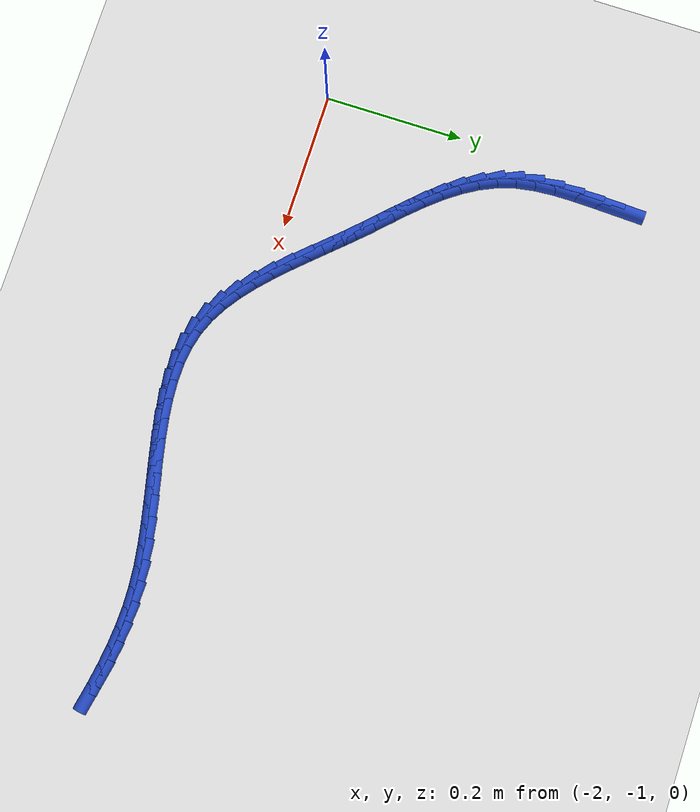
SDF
<sdf version="1.6">
 <world name="default">
  <model name="ground_plane">
   <static>1</static>
   <link name="link">
    <collision name="collision">
     <geometry><plane><normal>0 0 1</normal><size>100 100</size></plane></geometry>
     <surface><friction><ode><mu>100</mu><mu2>50</mu2></ode></friction></surface>
    </collision>
    <visual name="visual">
     <cast_shadows>0</cast_shadows>
     <geometry><plane><normal>0 0 1</normal><size>100 100</size></plane></geometry>
     <material>
      <script><uri>file://media/materials/scripts/gazebo.material</uri><name>Gazebo/WhiteGlow</name></script>
     </material>
    </visual>
   </link>
  </model>
  <model name="line">
   <link name="link_145">
    <pose>-1.9664138129457012 -0.5564161831803444 0.01 0 1.57 1.532959998804145</pose>
    <collision name="collision">
     <geometry><cylinder><radius>0.01</radius><length>0.08</length></cylinder></geometry>
    </collision>
    <visual name="visual">
     <material>
      <script><name>Gazebo/Blue</name><uri>file://media/materials/scripts/gazebo.material</uri></script>
     </material>
     <geometry><cylinder><radius>0.01</radius><length>0.08</length></cylinder></geometry>
    </visual>
   </link>
   <link name="link_146">
    <pose>-1.9675698773908383 -0.5869559523551466 0.01 0 1.57 1.542069471595043</pose>
    <collision name="collision">
     <geometry><cylinder><radius>0.01</radius><length>0.08</length></cylinder></geometry>
    </collision>
    <visual name="visual">
     <material>
      <script><name>Gazebo/Blue</name><uri>file://media/materials/scripts/gazebo.material</uri></script>
     </material>
     <geometry><cylinder><radius>0.01</radius><length>0.08</length></cylinder></geometry>
    </visual>
   </link>
   <link name="link_147">
    <pose>-1.9684472617721551 -0.6174898556772571 0.01 0 1.57 -1.5646800765860154</pose>
    <collision name="collision">
     <geometry><cylinder><radius>0.01</radius><length>0.08</length></cylinder></geometry>
    </collision>
    <visual name="visual">
     <material>
      <script><name>Gazebo/Blue</name><uri>file://media/materials/scripts/gazebo.material</uri></script>
     </material>
     <geometry><cylinder><radius>0.01</radius><length>0.08</length></cylinder></geometry>
    </visual>
   </link>
   <link name="link_148">
    <pose>-1.9682631058999742 -0.6475987573005264 0.01 0 1.57 -1.5015896643664892</pose>
    <collision name="collision">
     <geometry><cylinder><radius>0.01</radius><length>0.08</length></cylinder></geometry>
    </collision>
    <visual name="visual">
     <material>
      <script><name>Gazebo/Blue</name><uri>file://media/materials/scripts/gazebo.material</uri></script>
     </material>
     <geometry><cylinder><radius>0.01</radius><length>0.08</length></cylinder></geometry>
    </visual>
   </link>
   <link name="link_149">
    <pose>-1.966234549584616 -0.676863521378805 0.01 0 1.57 -1.4060333041841109</pose>
    <collision name="collision">
     <geometry><cylinder><radius>0.01</radius><length>0.08</length></cylinder></geometry>
    </collision>
    <visual name="visual">
     <material>
      <script><name>Gazebo/Blue</name><uri>file://media/materials/scripts/gazebo.material</uri></script>
     </material>
     <geometry><cylinder><radius>0.01</radius><length>0.08</length></cylinder></geometry>
    </visual>
   </link>
   <link name="link_150">
    <pose>-1.9615787326364034 -0.7048650120659437 0.01 0 1.57 -1.2762497778841762</pose>
    <collision name="collision">
     <geometry><cylinder><radius>0.01</radius><length>0.08</length></cylinder></geometry>
    </collision>
    <visual name="visual">
     <material>
      <script><name>Gazebo/Blue</name><uri>file://media/materials/scripts/gazebo.material</uri></script>
     </material>
     <geometry><cylinder><radius>0.01</radius><length>0.08</length></cylinder></geometry>
    </visual>
   </link>
   <link name="link_151">
    <pose>-1.9535823979292615 -0.7312232848032099 0.01 0 1.57 -1.1422422235340897</pose>
    <collision name="collision">
     <geometry><cylinder><radius>0.01</radius><length>0.08</length></cylinder></geometry>
    </collision>
    <visual name="visual">
     <material>
      <script><name>Gazebo/Blue</name><uri>file://media/materials/scripts/gazebo.material</uri></script>
     </material>
     <geometry><cylinder><radius>0.01</radius><length>0.08</length></cylinder></geometry>
    </visual>
   </link>
   <link name="link_152">
    <pose>-1.9422736483523702 -0.7559758314482129 0.01 0 1.57 -1.0277716051725627</pose>
    <collision name="collision">
     <geometry><cylinder><radius>0.01</radius><length>0.08</length></cylinder></geometry>
    </collision>
    <visual name="visual">
     <material>
      <script><name>Gazebo/Blue</name><uri>file://media/materials/scripts/gazebo.material</uri></script>
     </material>
     <geometry><cylinder><radius>0.01</radius><length>0.08</length></cylinder></geometry>
    </visual>
   </link>
   <link name="link_153">
    <pose>-1.9281285517176798 -0.7794123787621998 0.01 0 1.57 -0.9362396644843826</pose>
    <collision name="collision">
     <geometry><cylinder><radius>0.01</radius><length>0.08</length></cylinder></geometry>
    </collision>
    <visual name="visual">
     <material>
      <script><name>Gazebo/Blue</name><uri>file://media/materials/scripts/gazebo.material</uri></script>
     </material>
     <geometry><cylinder><radius>0.01</radius><length>0.08</length></cylinder></geometry>
    </visual>
   </link>
   <link name="link_154">
    <pose>-1.911629390287942 -0.8018261526674432 0.01 0 1.57 -0.8679282466453427</pose>
    <collision name="collision">
     <geometry><cylinder><radius>0.01</radius><length>0.08</length></cylinder></geometry>
    </collision>
    <visual name="visual">
     <material>
      <script><name>Gazebo/Blue</name><uri>file://media/materials/scripts/gazebo.material</uri></script>
     </material>
     <geometry><cylinder><radius>0.01</radius><length>0.08</length></cylinder></geometry>
    </visual>
   </link>
   <link name="link_155">
    <pose>-1.8932584463259048 -0.8235103790862148 0.01 0 1.57 -0.8216544096424107</pose>
    <collision name="collision">
     <geometry><cylinder><radius>0.01</radius><length>0.08</length></cylinder></geometry>
    </collision>
    <visual name="visual">
     <material>
      <script><name>Gazebo/Blue</name><uri>file://media/materials/scripts/gazebo.material</uri></script>
     </material>
     <geometry><cylinder><radius>0.01</radius><length>0.08</length></cylinder></geometry>
    </visual>
   </link>
   <link name="link_156">
    <pose>-1.8734980020943186 -0.8447582839407867 0.01 0 1.57 -0.7958627349690367</pose>
    <collision name="collision">
     <geometry><cylinder><radius>0.01</radius><length>0.08</length></cylinder></geometry>
    </collision>
    <visual name="visual">
     <material>
      <script><name>Gazebo/Blue</name><uri>file://media/materials/scripts/gazebo.material</uri></script>
     </material>
     <geometry><cylinder><radius>0.01</radius><length>0.08</length></cylinder></geometry>
    </visual>
   </link>
   <link name="link_157">
    <pose>-1.8528303398559338 -0.8658630931534316 0.01 0 1.57 -0.7892316971747888</pose>
    <collision name="collision">
     <geometry><cylinder><radius>0.01</radius><length>0.08</length></cylinder></geometry>
    </collision>
    <visual name="visual">
     <material>
      <script><name>Gazebo/Blue</name><uri>file://media/materials/scripts/gazebo.material</uri></script>
     </material>
     <geometry><cylinder><radius>0.01</radius><length>0.08</length></cylinder></geometry>
    </visual>
   </link>
   <link name="link_158">
    <pose>-1.8317377418735 -0.8871180326464214 0.01 0 1.57 -0.8007609756841464</pose>
    <collision name="collision">
     <geometry><cylinder><radius>0.01</radius><length>0.08</length></cylinder></geometry>
    </collision>
    <visual name="visual">
     <material>
      <script><name>Gazebo/Blue</name><uri>file://media/materials/scripts/gazebo.material</uri></script>
     </material>
     <geometry><cylinder><radius>0.01</radius><length>0.08</length></cylinder></geometry>
    </visual>
   </link>
   <link name="link_159">
    <pose>-1.8106995045670624 -0.9088128210584154 0.01 0 1.57 -0.8187321550707594</pose>
    <collision name="collision">
     <geometry><cylinder><radius>0.01</radius><length>0.08</length></cylinder></geometry>
    </collision>
    <visual name="visual">
     <material>
      <script><name>Gazebo/Blue</name><uri>file://media/materials/scripts/gazebo.material</uri></script>
     </material>
     <geometry><cylinder><radius>0.01</radius><length>0.08</length></cylinder></geometry>
    </visual>
   </link>
   <link name="link_160">
    <pose>-1.7899698000949373 -0.9309727375675313 0.01 0 1.57 -0.8242228063193973</pose>
    <collision name="collision">
     <geometry><cylinder><radius>0.01</radius><length>0.08</length></cylinder></geometry>
    </collision>
    <visual name="visual">
     <material>
      <script><name>Gazebo/Blue</name><uri>file://media/materials/scripts/gazebo.material</uri></script>
     </material>
     <geometry><cylinder><radius>0.01</radius><length>0.08</length></cylinder></geometry>
    </visual>
   </link>
   <link name="link_161">
    <pose>-1.7694244904459182 -0.9531786839383712 0.01 0 1.57 -0.8153815896472455</pose>
    <collision name="collision">
     <geometry><cylinder><radius>0.01</radius><length>0.08</length></cylinder></geometry>
    </collision>
    <visual name="visual">
     <material>
      <script><name>Gazebo/Blue</name><uri>file://media/materials/scripts/gazebo.material</uri></script>
     </material>
     <geometry><cylinder><radius>0.01</radius><length>0.08</length></cylinder></geometry>
    </visual>
   </link>
   <link name="link_162">
    <pose>-1.74890320259636 -0.9749689989213696 0.01 0 1.57 -0.7915414396989848</pose>
    <collision name="collision">
     <geometry><cylinder><radius>0.01</radius><length>0.08</length></cylinder></geometry>
    </collision>
    <visual name="visual">
     <material>
      <script><name>Gazebo/Blue</name><uri>file://media/materials/scripts/gazebo.material</uri></script>
     </material>
     <geometry><cylinder><radius>0.01</radius><length>0.08</length></cylinder></geometry>
    </visual>
   </link>
   <link name="link_163">
    <pose>-1.72824556352262 -0.9958820212669626 0.01 0 1.57 -0.7513538764360551</pose>
    <collision name="collision">
     <geometry><cylinder><radius>0.01</radius><length>0.08</length></cylinder></geometry>
    </collision>
    <visual name="visual">
     <material>
      <script><name>Gazebo/Blue</name><uri>file://media/materials/scripts/gazebo.material</uri></script>
     </material>
     <geometry><cylinder><radius>0.01</radius><length>0.08</length></cylinder></geometry>
    </visual>
   </link>
   <link name="link_164">
    <pose>-1.7072912002010538 -1.0154560897255853 0.01 0 1.57 -0.6928215092338055</pose>
    <collision name="collision">
     <geometry><cylinder><radius>0.01</radius><length>0.08</length></cylinder></geometry>
    </collision>
    <visual name="visual">
     <material>
      <script><name>Gazebo/Blue</name><uri>file://media/materials/scripts/gazebo.material</uri></script>
     </material>
     <geometry><cylinder><radius>0.01</radius><length>0.08</length></cylinder></geometry>
    </visual>
   </link>
   <link name="link_165">
    <pose>-1.6858797396080187 -1.033229543047673 0.01 0 1.57 -0.613490757793533</pose>
    <collision name="collision">
     <geometry><cylinder><radius>0.01</radius><length>0.08</length></cylinder></geometry>
    </collision>
    <visual name="visual">
     <material>
      <script><name>Gazebo/Blue</name><uri>file://media/materials/scripts/gazebo.material</uri></script>
     </material>
     <geometry><cylinder><radius>0.01</radius><length>0.08</length></cylinder></geometry>
    </visual>
   </link>
   <link name="link_166">
    <pose>-1.6638508087198705 -1.0487407199836611 0.01 0 1.57 -0.5110037361823909</pose>
    <collision name="collision">
     <geometry><cylinder><radius>0.01</radius><length>0.08</length></cylinder></geometry>
    </collision>
    <visual name="visual">
     <material>
      <script><name>Gazebo/Blue</name><uri>file://media/materials/scripts/gazebo.material</uri></script>
     </material>
     <geometry><cylinder><radius>0.01</radius><length>0.08</length></cylinder></geometry>
    </visual>
   </link>
   <link name="link_167">
    <pose>-1.641044034512965 -1.0615279592839846 0.01 0 1.57 -0.38430409889411205</pose>
    <collision name="collision">
     <geometry><cylinder><radius>0.01</radius><length>0.08</length></cylinder></geometry>
    </collision>
    <visual name="visual">
     <material>
      <script><name>Gazebo/Blue</name><uri>file://media/materials/scripts/gazebo.material</uri></script>
     </material>
     <geometry><cylinder><radius>0.01</radius><length>0.08</length></cylinder></geometry>
    </visual>
   </link>
   <link name="link_168">
    <pose>-1.6172993437387388 -1.071130599088426 0.01 0 1.57 -0.2452991314842051</pose>
    <collision name="collision">
     <geometry><cylinder><radius>0.01</radius><length>0.08</length></cylinder></geometry>
    </collision>
    <visual name="visual">
     <material>
      <script><name>Gazebo/Blue</name><uri>file://media/materials/scripts/gazebo.material</uri></script>
     </material>
     <geometry><cylinder><radius>0.01</radius><length>0.08</length></cylinder></geometry>
    </visual>
   </link>
   <link name="link_169">
    <pose>-1.592529693613451 -1.0773314463029544 0.01 0 1.57 -0.12156845479489757</pose>
    <collision name="collision">
     <geometry><cylinder><radius>0.01</radius><length>0.08</length></cylinder></geometry>
    </collision>
    <visual name="visual">
     <material>
      <script><name>Gazebo/Blue</name><uri>file://media/materials/scripts/gazebo.material</uri></script>
     </material>
     <geometry><cylinder><radius>0.01</radius><length>0.08</length></cylinder></geometry>
    </visual>
   </link>
   <link name="link_170">
    <pose>-1.566815902616047 -1.0804729232572543 0.01 0 1.57 -0.018935196786635758</pose>
    <collision name="collision">
     <geometry><cylinder><radius>0.01</radius><length>0.08</length></cylinder></geometry>
    </collision>
    <visual name="visual">
     <material>
      <script><name>Gazebo/Blue</name><uri>file://media/materials/scripts/gazebo.material</uri></script>
     </material>
     <geometry><cylinder><radius>0.01</radius><length>0.08</length></cylinder></geometry>
    </visual>
   </link>
   <link name="link_171">
    <pose>-1.540262284672378 -1.080975781338378 0.01 0 1.57 0.06276333508900467</pose>
    <collision name="collision">
     <geometry><cylinder><radius>0.01</radius><length>0.08</length></cylinder></geometry>
    </collision>
    <visual name="visual">
     <material>
      <script><name>Gazebo/Blue</name><uri>file://media/materials/scripts/gazebo.material</uri></script>
     </material>
     <geometry><cylinder><radius>0.01</radius><length>0.08</length></cylinder></geometry>
    </visual>
   </link>
   <link name="link_172">
    <pose>-1.512973153708295 -1.0792607719333789 0.01 0 1.57 0.12513372345226895</pose>
    <collision name="collision">
     <geometry><cylinder><radius>0.01</radius><length>0.08</length></cylinder></geometry>
    </collision>
    <visual name="visual">
     <material>
      <script><name>Gazebo/Blue</name><uri>file://media/materials/scripts/gazebo.material</uri></script>
     </material>
     <geometry><cylinder><radius>0.01</radius><length>0.08</length></cylinder></geometry>
    </visual>
   </link>
   <link name="link_173">
    <pose>-1.4850528236496487 -1.0757486464293098 0.01 0 1.57 0.17018205235769726</pose>
    <collision name="collision">
     <geometry><cylinder><radius>0.01</radius><length>0.08</length></cylinder></geometry>
    </collision>
    <visual name="visual">
     <material>
      <script><name>Gazebo/Blue</name><uri>file://media/materials/scripts/gazebo.material</uri></script>
     </material>
     <geometry><cylinder><radius>0.01</radius><length>0.08</length></cylinder></geometry>
    </visual>
   </link>
   <link name="link_174">
    <pose>-1.4566056084222896 -1.070860156213224 0.01 0 1.57 0.19973075865197448</pose>
    <collision name="collision">
     <geometry><cylinder><radius>0.01</radius><length>0.08</length></cylinder></geometry>
    </collision>
    <visual name="visual">
     <material>
      <script><name>Gazebo/Blue</name><uri>file://media/materials/scripts/gazebo.material</uri></script>
     </material>
     <geometry><cylinder><radius>0.01</radius><length>0.08</length></cylinder></geometry>
    </visual>
   </link>
   <link name="link_175">
    <pose>-1.4277358219520688 -1.0650160526721741 0.01 0 1.57 0.21516416035288347</pose>
    <collision name="collision">
     <geometry><cylinder><radius>0.01</radius><length>0.08</length></cylinder></geometry>
    </collision>
    <visual name="visual">
     <material>
      <script><name>Gazebo/Blue</name><uri>file://media/materials/scripts/gazebo.material</uri></script>
     </material>
     <geometry><cylinder><radius>0.01</radius><length>0.08</length></cylinder></geometry>
    </visual>
   </link>
   <link name="link_176">
    <pose>-1.3985477781648379 -1.0586370871932134 0.01 0 1.57 0.2173494770353604</pose>
    <collision name="collision">
     <geometry><cylinder><radius>0.01</radius><length>0.08</length></cylinder></geometry>
    </collision>
    <visual name="visual">
     <material>
      <script><name>Gazebo/Blue</name><uri>file://media/materials/scripts/gazebo.material</uri></script>
     </material>
     <geometry><cylinder><radius>0.01</radius><length>0.08</length></cylinder></geometry>
    </visual>
   </link>
   <link name="link_177">
    <pose>-1.3691457909864464 -1.0521440111633946 0.01 0 1.57 0.20663503658347734</pose>
    <collision name="collision">
     <geometry><cylinder><radius>0.01</radius><length>0.08</length></cylinder></geometry>
    </collision>
    <visual name="visual">
     <material>
      <script><name>Gazebo/Blue</name><uri>file://media/materials/scripts/gazebo.material</uri></script>
     </material>
     <geometry><cylinder><radius>0.01</radius><length>0.08</length></cylinder></geometry>
    </visual>
   </link>
   <link name="link_178">
    <pose>-1.3396341743427451 -1.0459575759697703 0.01 0 1.57 0.18287969786750466</pose>
    <collision name="collision">
     <geometry><cylinder><radius>0.01</radius><length>0.08</length></cylinder></geometry>
    </collision>
    <visual name="visual">
     <material>
      <script><name>Gazebo/Blue</name><uri>file://media/materials/scripts/gazebo.material</uri></script>
     </material>
     <geometry><cylinder><radius>0.01</radius><length>0.08</length></cylinder></geometry>
    </visual>
   </link>
   <link name="link_179">
    <pose>-1.3101172421595855 -1.0404985329993943 0.01 0 1.57 0.1455042239855722</pose>
    <collision name="collision">
     <geometry><cylinder><radius>0.01</radius><length>0.08</length></cylinder></geometry>
    </collision>
    <visual name="visual">
     <material>
      <script><name>Gazebo/Blue</name><uri>file://media/materials/scripts/gazebo.material</uri></script>
     </material>
     <geometry><cylinder><radius>0.01</radius><length>0.08</length></cylinder></geometry>
    </visual>
   </link>
   <link name="link_180">
    <pose>-1.2806993083628184 -1.0361876336393194 0.01 0 1.57 0.09358330373022426</pose>
    <collision name="collision">
     <geometry><cylinder><radius>0.01</radius><length>0.08</length></cylinder></geometry>
    </collision>
    <visual name="visual">
     <material>
      <script><name>Gazebo/Blue</name><uri>file://media/materials/scripts/gazebo.material</uri></script>
     </material>
     <geometry><cylinder><radius>0.01</radius><length>0.08</length></cylinder></geometry>
    </visual>
   </link>
   <link name="link_181">
    <pose>-1.2514846857431907 -1.0334456233689255 0.01 0 1.57 0.030179511983161576</pose>
    <collision name="collision">
     <geometry><cylinder><radius>0.01</radius><length>0.08</length></cylinder></geometry>
    </collision>
    <visual name="visual">
     <material>
      <script><name>Gazebo/Blue</name><uri>file://media/materials/scripts/gazebo.material</uri></script>
     </material>
     <geometry><cylinder><radius>0.01</radius><length>0.08</length></cylinder></geometry>
    </visual>
   </link>
   <link name="link_182">
    <pose>-1.2225544399775214 -1.0325722574993281 0.01 0 1.57 -0.030117200285580695</pose>
    <collision name="collision">
     <geometry><cylinder><radius>0.01</radius><length>0.08</length></cylinder></geometry>
    </collision>
    <visual name="visual">
     <material>
      <script><name>Gazebo/Blue</name><uri>file://media/materials/scripts/gazebo.material</uri></script>
     </material>
     <geometry><cylinder><radius>0.01</radius><length>0.08</length></cylinder></geometry>
    </visual>
   </link>
   <link name="link_183">
    <pose>-1.1939066356455128 -1.0334353101186555 0.01 0 1.57 -0.08332984013402556</pose>
    <collision name="collision">
     <geometry><cylinder><radius>0.01</radius><length>0.08</length></cylinder></geometry>
    </collision>
    <visual name="visual">
     <material>
      <script><name>Gazebo/Blue</name><uri>file://media/materials/scripts/gazebo.material</uri></script>
     </material>
     <geometry><cylinder><radius>0.01</radius><length>0.08</length></cylinder></geometry>
    </visual>
   </link>
   <link name="link_184">
    <pose>-1.1655208208283552 -1.0358061857494392 0.01 0 1.57 -0.12897265466444247</pose>
    <collision name="collision">
     <geometry><cylinder><radius>0.01</radius><length>0.08</length></cylinder></geometry>
    </collision>
    <visual name="visual">
     <material>
      <script><name>Gazebo/Blue</name><uri>file://media/materials/scripts/gazebo.material</uri></script>
     </material>
     <geometry><cylinder><radius>0.01</radius><length>0.08</length></cylinder></geometry>
    </visual>
   </link>
   <link name="link_185">
    <pose>-1.1373765436072398 -1.0394562889142105 0.01 0 1.57 -0.16678139758747113</pose>
    <collision name="collision">
     <geometry><cylinder><radius>0.01</radius><length>0.08</length></cylinder></geometry>
    </collision>
    <visual name="visual">
     <material>
      <script><name>Gazebo/Blue</name><uri>file://media/materials/scripts/gazebo.material</uri></script>
     </material>
     <geometry><cylinder><radius>0.01</radius><length>0.08</length></cylinder></geometry>
    </visual>
   </link>
   <link name="link_186">
    <pose>-1.1094533520633558 -1.0441570241355005 0.01 0 1.57 -0.19664141727321985</pose>
    <collision name="collision">
     <geometry><cylinder><radius>0.01</radius><length>0.08</length></cylinder></geometry>
    </collision>
    <visual name="visual">
     <material>
      <script><name>Gazebo/Blue</name><uri>file://media/materials/scripts/gazebo.material</uri></script>
     </material>
     <geometry><cylinder><radius>0.01</radius><length>0.08</length></cylinder></geometry>
    </visual>
   </link>
  </model>
 </world>
</sdf>
